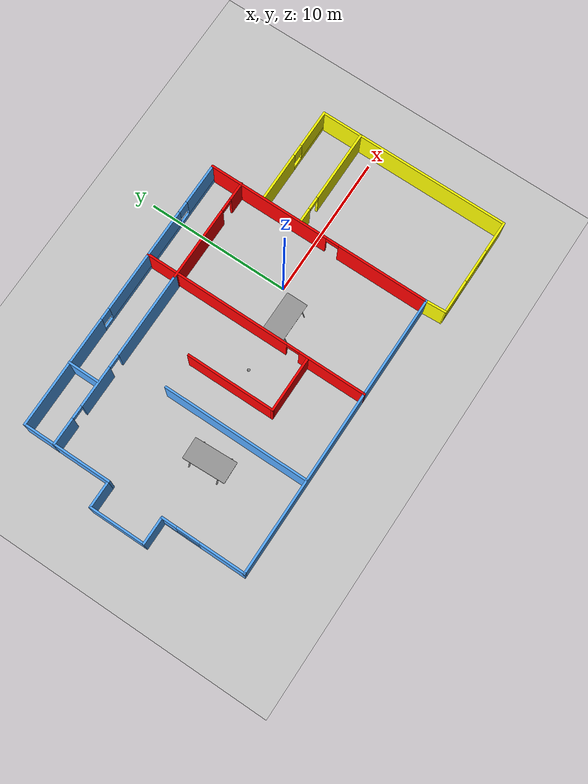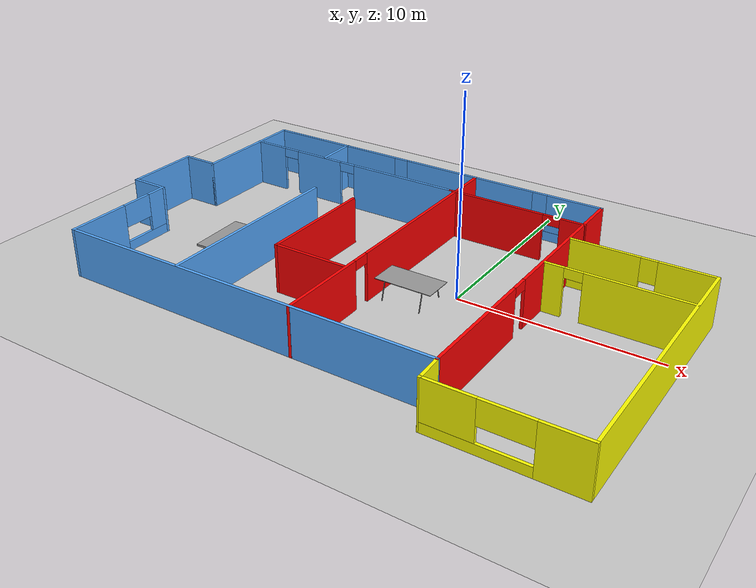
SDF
<sdf version="1.7">
 <world name="default">
  <plugin name="hello" filename="libwelcome_to_q802.so"/>
  <light name="sun" type="directional">
   <pose>0 0 10 0 -0 0</pose>
   <diffuse>0.8 0.8 0.8 1</diffuse>
   <specular>0.2 0.2 0.2 1</specular>
   <attenuation>
    <range>1000</range>
    <constant>0.9</constant>
    <linear>0.01</linear>
    <quadratic>0.001</quadratic>
   </attenuation>
   <direction>-0.5 0.1 -0.9</direction>
   <spot><inner_angle>0</inner_angle><outer_angle>0</outer_angle><falloff>0</falloff></spot>
  </light>
  <gravity>0 0 -9.8</gravity>
  <magnetic_field>6e-06 2.3e-05 -4.2e-05</magnetic_field>
  <atmosphere type="adiabatic"/>
  <physics name="default_physics" default="0" type="ode">
   <max_step_size>0.001</max_step_size>
   <real_time_factor>1</real_time_factor>
   <real_time_update_rate>1000</real_time_update_rate>
  </physics>
  <scene><ambient>0.4 0.4 0.4 1</ambient><background>0.7 0.7 0.7 1</background><shadows>1</shadows></scene>
  <spherical_coordinates>
   <surface_model>EARTH_WGS84</surface_model>
   <latitude_deg>0</latitude_deg>
   <longitude_deg>0</longitude_deg>
   <elevation>0</elevation>
   <heading_deg>0</heading_deg>
  </spherical_coordinates>
  <model name="Q802">
   <pose>-3.7633 -0.79824 0 0 -0 0</pose>
   <link name="Wall_10">
    <collision name="Wall_10_Collision">
     <geometry><box><size>6.3 0.15 2.5</size></box></geometry>
     <pose>0 0 1.25 0 -0 0</pose>
    </collision>
    <visual name="Wall_10_Visual">
     <pose>0 0 1.25 0 -0 0</pose>
     <geometry><box><size>6.3 0.15 2.5</size></box></geometry>
     <material>
      <script><uri>file://media/materials/scripts/gazebo.material</uri><name>Gazebo/Grey</name></script>
      <ambient>0.333333 0.666667 1 1</ambient>
     </material>
     <meta><layer>0</layer></meta>
    </visual>
    <pose>-12.4599 5.50976 0 0 -0 1.5708</pose>
   </link>
   <link name="Wall_14">
    <pose>10.8849 4.74464 0 0 -0 0</pose>
    <visual name="Wall_14_Visual_0">
     <pose>-1.76886 0 1.25 0 -0 0</pose>
     <geometry><box><size>3.46228 0.15 2.5</size></box></geometry>
     <material>
      <script><uri>file://media/materials/scripts/gazebo.material</uri><name>Gazebo/Grey</name></script>
      <ambient>1 1 0 1</ambient>
     </material>
     <meta><layer>0</layer></meta>
    </visual>
    <collision name="Wall_14_Collision_0">
     <geometry><box><size>3.46228 0.15 2.5</size></box></geometry>
     <pose>-1.76886 0 1.25 0 -0 0</pose>
    </collision>
    <visual name="Wall_14_Visual_1">
     <pose>1.73114 0 0.25 0 -0 0</pose>
     <geometry><box><size>3.53772 0.15 0.5</size></box></geometry>
     <material>
      <script><uri>file://media/materials/scripts/gazebo.material</uri><name>Gazebo/Grey</name></script>
      <ambient>1 1 0 1</ambient>
     </material>
     <meta><layer>0</layer></meta>
    </visual>
    <collision name="Wall_14_Collision_1">
     <geometry><box><size>3.53772 0.15 0.5</size></box></geometry>
     <pose>1.73114 0 0.25 0 -0 0</pose>
    </collision>
    <visual name="Wall_14_Visual_2">
     <pose>2.13114 0 1.5 0 -0 0</pose>
     <geometry><box><size>2.73772 0.15 2</size></box></geometry>
     <material>
      <script><uri>file://media/materials/scripts/gazebo.material</uri><name>Gazebo/Grey</name></script>
      <ambient>1 1 0 1</ambient>
     </material>
     <meta><layer>0</layer></meta>
    </visual>
    <collision name="Wall_14_Collision_2">
     <geometry><box><size>2.73772 0.15 2</size></box></geometry>
     <pose>2.13114 0 1.5 0 -0 0</pose>
    </collision>
    <visual name="Wall_14_Visual_3">
     <pose>0.362281 0 1.9 0 -0 0</pose>
     <geometry><box><size>0.8 0.15 1.2</size></box></geometry>
     <material>
      <script><uri>file://media/materials/scripts/gazebo.material</uri><name>Gazebo/Grey</name></script>
      <ambient>1 1 0 1</ambient>
     </material>
     <meta><layer>0</layer></meta>
    </visual>
    <collision name="Wall_14_Collision_3">
     <geometry><box><size>0.8 0.15 1.2</size></box></geometry>
     <pose>0.362281 0 1.9 0 -0 0</pose>
    </collision>
   </link>
   <link name="Wall_15">
    <collision name="Wall_15_Collision">
     <geometry><box><size>13.5 0.15 2.5</size></box></geometry>
     <pose>0 0 1.25 0 -0 0</pose>
    </collision>
    <visual name="Wall_15_Visual">
     <pose>0 0 1.25 0 -0 0</pose>
     <geometry><box><size>13.5 0.15 2.5</size></box></geometry>
     <material>
      <script><uri>file://media/materials/scripts/gazebo.material</uri><name>Gazebo/Grey</name></script>
      <ambient>1 1 0 1</ambient>
     </material>
     <meta><layer>0</layer></meta>
    </visual>
    <pose>14.3099 -1.93036 0 0 0 -1.5708</pose>
   </link>
   <link name="Wall_16">
    <pose>10.8849 -8.60536 0 0 -0 3.14159</pose>
    <visual name="Wall_16_Visual_0">
     <pose>-2.39252 0 1.25 0 -0 0</pose>
     <geometry><box><size>2.21496 0.15 2.5</size></box></geometry>
     <material>
      <script><uri>file://media/materials/scripts/gazebo.material</uri><name>Gazebo/Grey</name></script>
      <ambient>1 1 0 1</ambient>
     </material>
     <meta><layer>0</layer></meta>
    </visual>
    <collision name="Wall_16_Collision_0">
     <geometry><box><size>2.21496 0.15 2.5</size></box></geometry>
     <pose>-2.39252 0 1.25 0 -0 0</pose>
    </collision>
    <visual name="Wall_16_Visual_1">
     <pose>1.10748 0 0.25 0 -0 0</pose>
     <geometry><box><size>4.78504 0.15 0.5</size></box></geometry>
     <material>
      <script><uri>file://media/materials/scripts/gazebo.material</uri><name>Gazebo/Grey</name></script>
      <ambient>1 1 0 1</ambient>
     </material>
     <meta><layer>0</layer></meta>
    </visual>
    <collision name="Wall_16_Collision_1">
     <geometry><box><size>4.78504 0.15 0.5</size></box></geometry>
     <pose>1.10748 0 0.25 0 -0 0</pose>
    </collision>
    <visual name="Wall_16_Visual_2">
     <pose>2.28581 0 1.5 0 -0 0</pose>
     <geometry><box><size>2.42838 0.15 2</size></box></geometry>
     <material>
      <script><uri>file://media/materials/scripts/gazebo.material</uri><name>Gazebo/Grey</name></script>
      <ambient>1 1 0 1</ambient>
     </material>
     <meta><layer>0</layer></meta>
    </visual>
    <collision name="Wall_16_Collision_2">
     <geometry><box><size>2.42838 0.15 2</size></box></geometry>
     <pose>2.28581 0 1.5 0 -0 0</pose>
    </collision>
    <visual name="Wall_16_Visual_3">
     <pose>-0.106709 0 1.9 0 -0 0</pose>
     <geometry><box><size>2.35665 0.15 1.2</size></box></geometry>
     <material>
      <script><uri>file://media/materials/scripts/gazebo.material</uri><name>Gazebo/Grey</name></script>
      <ambient>1 1 0 1</ambient>
     </material>
     <meta><layer>0</layer></meta>
    </visual>
    <collision name="Wall_16_Collision_3">
     <geometry><box><size>2.35665 0.15 1.2</size></box></geometry>
     <pose>-0.106709 0 1.9 0 -0 0</pose>
    </collision>
   </link>
   <link name="Wall_17">
    <collision name="Wall_17_Collision">
     <geometry><box><size>1.49193 0.15 2.5</size></box></geometry>
     <pose>0 0 1.25 0 -0 0</pose>
    </collision>
    <visual name="Wall_17_Visual">
     <pose>0 0 1.25 0 -0 0</pose>
     <geometry><box><size>1.49193 0.15 2.5</size></box></geometry>
     <material>
      <script><uri>file://media/materials/scripts/gazebo.material</uri><name>Gazebo/Grey</name></script>
      <ambient>1 1 0 1</ambient>
     </material>
     <meta><layer>0</layer></meta>
    </visual>
    <pose>7.425 -7.9353 0 0 -0 1.62282</pose>
   </link>
   <link name="Wall_19">
    <pose>0.378646 0.656096 0 0 0 -1.5708</pose>
    <visual name="Wall_19_Visual_0">
     <pose>-2.82346 0 1.25 0 -0 0</pose>
     <geometry><box><size>10.3531 0.15 2.5</size></box></geometry>
     <material>
      <script><uri>file://media/materials/scripts/gazebo.material</uri><name>Gazebo/Grey</name></script>
      <ambient>1 0 0 1</ambient>
     </material>
     <meta><layer>0</layer></meta>
    </visual>
    <collision name="Wall_19_Collision_0">
     <geometry><box><size>10.3531 0.15 2.5</size></box></geometry>
     <pose>-2.82346 0 1.25 0 -0 0</pose>
    </collision>
    <visual name="Wall_19_Visual_1">
     <pose>5.62654 0 1.25 0 -0 0</pose>
     <geometry><box><size>4.74692 0.15 2.5</size></box></geometry>
     <material>
      <script><uri>file://media/materials/scripts/gazebo.material</uri><name>Gazebo/Grey</name></script>
      <ambient>1 0 0 1</ambient>
     </material>
     <meta><layer>0</layer></meta>
    </visual>
    <collision name="Wall_19_Collision_1">
     <geometry><box><size>4.74692 0.15 2.5</size></box></geometry>
     <pose>5.62654 0 1.25 0 -0 0</pose>
    </collision>
    <visual name="Wall_19_Visual_2">
     <pose>2.80308 0 2.25 0 -0 0</pose>
     <geometry><box><size>0.9 0.15 0.5</size></box></geometry>
     <material>
      <script><uri>file://media/materials/scripts/gazebo.material</uri><name>Gazebo/Grey</name></script>
      <ambient>1 0 0 1</ambient>
     </material>
     <meta><layer>0</layer></meta>
    </visual>
    <collision name="Wall_19_Collision_2">
     <geometry><box><size>0.9 0.15 0.5</size></box></geometry>
     <pose>2.80308 0 2.25 0 -0 0</pose>
    </collision>
   </link>
   <link name="Wall_21">
    <pose>3.76429 6.42301 0 0 -0 3.14159</pose>
    <visual name="Wall_21_Visual_0">
     <pose>-3.07248 0 1.25 0 -0 0</pose>
     <geometry><box><size>1.31441 0.15 2.5</size></box></geometry>
     <material>
      <script><uri>file://media/materials/scripts/gazebo.material</uri><name>Gazebo/Grey</name></script>
      <ambient>1 0 0 1</ambient>
     </material>
     <meta><layer>0</layer></meta>
    </visual>
    <collision name="Wall_21_Collision_0">
     <geometry><box><size>1.31441 0.15 2.5</size></box></geometry>
     <pose>-3.07248 0 1.25 0 -0 0</pose>
    </collision>
    <visual name="Wall_21_Visual_1">
     <pose>1.1072 0 1.25 0 -0 0</pose>
     <geometry><box><size>5.24495 0.15 2.5</size></box></geometry>
     <material>
      <script><uri>file://media/materials/scripts/gazebo.material</uri><name>Gazebo/Grey</name></script>
      <ambient>1 0 0 1</ambient>
     </material>
     <meta><layer>0</layer></meta>
    </visual>
    <collision name="Wall_21_Collision_1">
     <geometry><box><size>5.24495 0.15 2.5</size></box></geometry>
     <pose>1.1072 0 1.25 0 -0 0</pose>
    </collision>
    <visual name="Wall_21_Visual_2">
     <pose>-1.96527 0 2.25 0 -0 0</pose>
     <geometry><box><size>0.9 0.15 0.5</size></box></geometry>
     <material>
      <script><uri>file://media/materials/scripts/gazebo.material</uri><name>Gazebo/Grey</name></script>
      <ambient>1 0 0 1</ambient>
     </material>
     <meta><layer>0</layer></meta>
    </visual>
    <collision name="Wall_21_Collision_2">
     <geometry><box><size>0.9 0.15 0.5</size></box></geometry>
     <pose>-1.96527 0 2.25 0 -0 0</pose>
    </collision>
   </link>
   <link name="Wall_22">
    <pose>-6.16712 6.42301 0 0 -0 3.14159</pose>
    <visual name="Wall_22_Visual_0">
     <pose>-3.32437 0 1.25 0 -0 0</pose>
     <geometry><box><size>6.10127 0.15 2.5</size></box></geometry>
     <material>
      <script><uri>file://media/materials/scripts/gazebo.material</uri><name>Gazebo/Grey</name></script>
      <ambient>0.333333 0.666667 1 1</ambient>
     </material>
     <meta><layer>0</layer></meta>
    </visual>
    <collision name="Wall_22_Collision_0">
     <geometry><box><size>6.10127 0.15 2.5</size></box></geometry>
     <pose>-3.32437 0 1.25 0 -0 0</pose>
    </collision>
    <visual name="Wall_22_Visual_1">
     <pose>2.07212 0 1.25 0 -0 0</pose>
     <geometry><box><size>2.8917 0.15 2.5</size></box></geometry>
     <material>
      <script><uri>file://media/materials/scripts/gazebo.material</uri><name>Gazebo/Grey</name></script>
      <ambient>0.333333 0.666667 1 1</ambient>
     </material>
     <meta><layer>0</layer></meta>
    </visual>
    <collision name="Wall_22_Collision_1">
     <geometry><box><size>2.8917 0.15 2.5</size></box></geometry>
     <pose>2.07212 0 1.25 0 -0 0</pose>
    </collision>
    <visual name="Wall_22_Visual_2">
     <pose>5.39648 0 1.25 0 -0 0</pose>
     <geometry><box><size>1.95704 0.15 2.5</size></box></geometry>
     <material>
      <script><uri>file://media/materials/scripts/gazebo.material</uri><name>Gazebo/Grey</name></script>
      <ambient>0.333333 0.666667 1 1</ambient>
     </material>
     <meta><layer>0</layer></meta>
    </visual>
    <collision name="Wall_22_Collision_2">
     <geometry><box><size>1.95704 0.15 2.5</size></box></geometry>
     <pose>5.39648 0 1.25 0 -0 0</pose>
    </collision>
    <visual name="Wall_22_Visual_3">
     <pose>0.176266 0 2.25 0 -0 0</pose>
     <geometry><box><size>0.9 0.15 0.5</size></box></geometry>
     <material>
      <script><uri>file://media/materials/scripts/gazebo.material</uri><name>Gazebo/Grey</name></script>
      <ambient>0.333333 0.666667 1 1</ambient>
     </material>
     <meta><layer>0</layer></meta>
    </visual>
    <collision name="Wall_22_Collision_3">
     <geometry><box><size>0.9 0.15 0.5</size></box></geometry>
     <pose>0.176266 0 2.25 0 -0 0</pose>
    </collision>
    <visual name="Wall_22_Visual_4">
     <pose>3.96796 0 2.25 0 -0 0</pose>
     <geometry><box><size>0.9 0.15 0.5</size></box></geometry>
     <material>
      <script><uri>file://media/materials/scripts/gazebo.material</uri><name>Gazebo/Grey</name></script>
      <ambient>0.333333 0.666667 1 1</ambient>
     </material>
     <meta><layer>0</layer></meta>
    </visual>
    <collision name="Wall_22_Collision_4">
     <geometry><box><size>0.9 0.15 0.5</size></box></geometry>
     <pose>3.96796 0 2.25 0 -0 0</pose>
    </collision>
   </link>
   <link name="Wall_24">
    <collision name="Wall_24_Collision">
     <geometry><box><size>4 0.15 2.5</size></box></geometry>
     <pose>0 0 1.25 0 -0 0</pose>
    </collision>
    <visual name="Wall_24_Visual">
     <pose>0 0 1.25 0 -0 0</pose>
     <geometry><box><size>4 0.15 2.5</size></box></geometry>
     <material>
      <script><uri>file://media/materials/scripts/gazebo.material</uri><name>Gazebo/Grey</name></script>
      <ambient>1 0 0 1</ambient>
     </material>
     <meta><layer>0</layer></meta>
    </visual>
    <pose>-1.57906 -3.23308 0 0 -0 3.14159</pose>
   </link>
   <link name="Wall_25">
    <collision name="Wall_25_Collision">
     <geometry><box><size>6.25 0.15 2.5</size></box></geometry>
     <pose>0 0 1.25 0 -0 0</pose>
    </collision>
    <visual name="Wall_25_Visual">
     <pose>0 0 1.25 0 -0 0</pose>
     <geometry><box><size>6.25 0.15 2.5</size></box></geometry>
     <material>
      <script><uri>file://media/materials/scripts/gazebo.material</uri><name>Gazebo/Grey</name></script>
      <ambient>1 0 0 1</ambient>
     </material>
     <meta><layer>0</layer></meta>
    </visual>
    <pose>-3.50406 -0.18308 0 0 -0 1.5708</pose>
   </link>
   <link name="Wall_27">
    <collision name="Wall_27_Collision">
     <geometry><box><size>10.25 0.15 2.5</size></box></geometry>
     <pose>0 0 1.25 0 -0 0</pose>
    </collision>
    <visual name="Wall_27_Visual">
     <pose>0 0 1.25 0 -0 0</pose>
     <geometry><box><size>10.25 0.15 2.5</size></box></geometry>
     <material>
      <script><uri>file://media/materials/scripts/gazebo.material</uri><name>Gazebo/Grey</name></script>
      <ambient>0.333333 0.666667 1 1</ambient>
     </material>
     <meta><layer>0</layer></meta>
    </visual>
    <pose>-5.89914 -2.18239 0 0 -0 1.5708</pose>
   </link>
   <link name="Wall_29">
    <collision name="Wall_29_Collision">
     <geometry><box><size>2.25 0.15 2.5</size></box></geometry>
     <pose>0 0 1.25 0 -0 0</pose>
    </collision>
    <visual name="Wall_29_Visual">
     <pose>0 0 1.25 0 -0 0</pose>
     <geometry><box><size>2.25 0.15 2.5</size></box></geometry>
     <material>
      <script><uri>file://media/materials/scripts/gazebo.material</uri><name>Gazebo/Grey</name></script>
      <ambient>0.333333 0.666667 1 1</ambient>
     </material>
     <meta><layer>0</layer></meta>
    </visual>
    <pose>-7.90194 7.55916 0 0 0 -1.5708</pose>
   </link>
   <link name="Wall_3">
    <pose>-2.53489 8.58475 0 0 -0 0</pose>
    <visual name="Wall_3_Visual_0">
     <pose>-6.04357 0 1.25 0 -0 0</pose>
     <geometry><box><size>7.91286 0.15 2.5</size></box></geometry>
     <material>
      <script><uri>file://media/materials/scripts/gazebo.material</uri><name>Gazebo/Grey</name></script>
      <ambient>0.333333 0.666667 1 1</ambient>
     </material>
     <meta><layer>0</layer></meta>
    </visual>
    <collision name="Wall_3_Collision_0">
     <geometry><box><size>7.91286 0.15 2.5</size></box></geometry>
     <pose>-6.04357 0 1.25 0 -0 0</pose>
    </collision>
    <visual name="Wall_3_Visual_1">
     <pose>3.95643 0 0.25 0 -0 0</pose>
     <geometry><box><size>12.0871 0.15 0.5</size></box></geometry>
     <material>
      <script><uri>file://media/materials/scripts/gazebo.material</uri><name>Gazebo/Grey</name></script>
      <ambient>0.333333 0.666667 1 1</ambient>
     </material>
     <meta><layer>0</layer></meta>
    </visual>
    <collision name="Wall_3_Collision_1">
     <geometry><box><size>12.0871 0.15 0.5</size></box></geometry>
     <pose>3.95643 0 0.25 0 -0 0</pose>
    </collision>
    <visual name="Wall_3_Visual_2">
     <pose>2.47675 0 1.5 0 -0 0</pose>
     <geometry><box><size>7.52778 0.15 2</size></box></geometry>
     <material>
      <script><uri>file://media/materials/scripts/gazebo.material</uri><name>Gazebo/Grey</name></script>
      <ambient>0.333333 0.666667 1 1</ambient>
     </material>
     <meta><layer>0</layer></meta>
    </visual>
    <collision name="Wall_3_Collision_2">
     <geometry><box><size>7.52778 0.15 2</size></box></geometry>
     <pose>2.47675 0 1.5 0 -0 0</pose>
    </collision>
    <visual name="Wall_3_Visual_3">
     <pose>8.52032 0 1.5 0 -0 0</pose>
     <geometry><box><size>2.95936 0.15 2</size></box></geometry>
     <material>
      <script><uri>file://media/materials/scripts/gazebo.material</uri><name>Gazebo/Grey</name></script>
      <ambient>0.333333 0.666667 1 1</ambient>
     </material>
     <meta><layer>0</layer></meta>
    </visual>
    <collision name="Wall_3_Collision_3">
     <geometry><box><size>2.95936 0.15 2</size></box></geometry>
     <pose>8.52032 0 1.5 0 -0 0</pose>
    </collision>
    <visual name="Wall_3_Visual_4">
     <pose>-1.68714 0 1.9 0 -0 0</pose>
     <geometry><box><size>0.8 0.15 1.2</size></box></geometry>
     <material>
      <script><uri>file://media/materials/scripts/gazebo.material</uri><name>Gazebo/Grey</name></script>
      <ambient>0.333333 0.666667 1 1</ambient>
     </material>
     <meta><layer>0</layer></meta>
    </visual>
    <collision name="Wall_3_Collision_4">
     <geometry><box><size>0.8 0.15 1.2</size></box></geometry>
     <pose>-1.68714 0 1.9 0 -0 0</pose>
    </collision>
    <visual name="Wall_3_Visual_5">
     <pose>6.64064 0 1.9 0 -0 0</pose>
     <geometry><box><size>0.8 0.15 1.2</size></box></geometry>
     <material>
      <script><uri>file://media/materials/scripts/gazebo.material</uri><name>Gazebo/Grey</name></script>
      <ambient>0.333333 0.666667 1 1</ambient>
     </material>
     <meta><layer>0</layer></meta>
    </visual>
    <collision name="Wall_3_Collision_5">
     <geometry><box><size>0.8 0.15 1.2</size></box></geometry>
     <pose>6.64064 0 1.9 0 -0 0</pose>
    </collision>
   </link>
   <link name="Wall_33">
    <pose>10.8572 1.97538 0 0 -0 0</pose>
    <visual name="Wall_33_Visual_0">
     <pose>-2.97993 0 1.25 0 -0 0</pose>
     <geometry><box><size>1.04014 0.15 2.5</size></box></geometry>
     <material>
      <script><uri>file://media/materials/scripts/gazebo.material</uri><name>Gazebo/Grey</name></script>
      <ambient>1 1 0 1</ambient>
     </material>
     <meta><layer>0</layer></meta>
    </visual>
    <collision name="Wall_33_Collision_0">
     <geometry><box><size>1.04014 0.15 2.5</size></box></geometry>
     <pose>-2.97993 0 1.25 0 -0 0</pose>
    </collision>
    <visual name="Wall_33_Visual_1">
     <pose>0.970071 0 1.25 0 -0 0</pose>
     <geometry><box><size>5.05986 0.15 2.5</size></box></geometry>
     <material>
      <script><uri>file://media/materials/scripts/gazebo.material</uri><name>Gazebo/Grey</name></script>
      <ambient>1 1 0 1</ambient>
     </material>
     <meta><layer>0</layer></meta>
    </visual>
    <collision name="Wall_33_Collision_1">
     <geometry><box><size>5.05986 0.15 2.5</size></box></geometry>
     <pose>0.970071 0 1.25 0 -0 0</pose>
    </collision>
    <visual name="Wall_33_Visual_2">
     <pose>-2.00986 0 2.25 0 -0 0</pose>
     <geometry><box><size>0.9 0.15 0.5</size></box></geometry>
     <material>
      <script><uri>file://media/materials/scripts/gazebo.material</uri><name>Gazebo/Grey</name></script>
      <ambient>1 1 0 1</ambient>
     </material>
     <meta><layer>0</layer></meta>
    </visual>
    <collision name="Wall_33_Collision_2">
     <geometry><box><size>0.9 0.15 0.5</size></box></geometry>
     <pose>-2.00986 0 2.25 0 -0 0</pose>
    </collision>
   </link>
   <link name="Wall_4">
    <pose>7.39011 0.659755 0 0 0 -1.5708</pose>
    <visual name="Wall_4_Visual_0">
     <pose>-3.68302 0 1.25 0 -0 0</pose>
     <geometry><box><size>8.63396 0.15 2.5</size></box></geometry>
     <material>
      <script><uri>file://media/materials/scripts/gazebo.material</uri><name>Gazebo/Grey</name></script>
      <ambient>1 0 0 1</ambient>
     </material>
     <meta><layer>0</layer></meta>
    </visual>
    <collision name="Wall_4_Collision_0">
     <geometry><box><size>8.63396 0.15 2.5</size></box></geometry>
     <pose>-3.68302 0 1.25 0 -0 0</pose>
    </collision>
    <visual name="Wall_4_Visual_1">
     <pose>4.76698 0 1.25 0 -0 0</pose>
     <geometry><box><size>6.46604 0.15 2.5</size></box></geometry>
     <material>
      <script><uri>file://media/materials/scripts/gazebo.material</uri><name>Gazebo/Grey</name></script>
      <ambient>1 0 0 1</ambient>
     </material>
     <meta><layer>0</layer></meta>
    </visual>
    <collision name="Wall_4_Collision_1">
     <geometry><box><size>6.46604 0.15 2.5</size></box></geometry>
     <pose>4.76698 0 1.25 0 -0 0</pose>
    </collision>
    <visual name="Wall_4_Visual_2">
     <pose>1.08396 0 2.25 0 -0 0</pose>
     <geometry><box><size>0.9 0.15 0.5</size></box></geometry>
     <material>
      <script><uri>file://media/materials/scripts/gazebo.material</uri><name>Gazebo/Grey</name></script>
      <ambient>1 0 0 1</ambient>
     </material>
     <meta><layer>0</layer></meta>
    </visual>
    <collision name="Wall_4_Collision_2">
     <geometry><box><size>0.9 0.15 0.5</size></box></geometry>
     <pose>1.08396 0 2.25 0 -0 0</pose>
    </collision>
   </link>
   <link name="Wall_5">
    <collision name="Wall_5_Collision">
     <geometry><box><size>20 0.15 2.5</size></box></geometry>
     <pose>0 0 1.25 0 -0 0</pose>
    </collision>
    <visual name="Wall_5_Visual">
     <pose>0 0 1.25 0 -0 0</pose>
     <geometry><box><size>20 0.15 2.5</size></box></geometry>
     <material>
      <script><uri>file://media/materials/scripts/gazebo.material</uri><name>Gazebo/Grey</name></script>
      <ambient>0.333333 0.666667 1 1</ambient>
     </material>
     <meta><layer>0</layer></meta>
    </visual>
    <pose>-2.53489 -7.26525 0 0 -0 3.14159</pose>
   </link>
   <link name="Wall_6">
    <pose>-12.4599 -4.34025 0 0 -0 1.5708</pose>
    <visual name="Wall_6_Visual_0">
     <pose>-1.37719 0 1.25 0 -0 0</pose>
     <geometry><box><size>3.24563 0.15 2.5</size></box></geometry>
     <material>
      <script><uri>file://media/materials/scripts/gazebo.material</uri><name>Gazebo/Grey</name></script>
      <ambient>0.333333 0.666667 1 1</ambient>
     </material>
     <meta><layer>0</layer></meta>
    </visual>
    <collision name="Wall_6_Collision_0">
     <geometry><box><size>3.24563 0.15 2.5</size></box></geometry>
     <pose>-1.37719 0 1.25 0 -0 0</pose>
    </collision>
    <visual name="Wall_6_Visual_1">
     <pose>1.62281 0 0.25 0 -0 0</pose>
     <geometry><box><size>2.75437 0.15 0.5</size></box></geometry>
     <material>
      <script><uri>file://media/materials/scripts/gazebo.material</uri><name>Gazebo/Grey</name></script>
      <ambient>0.333333 0.666667 1 1</ambient>
     </material>
     <meta><layer>0</layer></meta>
    </visual>
    <collision name="Wall_6_Collision_1">
     <geometry><box><size>2.75437 0.15 0.5</size></box></geometry>
     <pose>1.62281 0 0.25 0 -0 0</pose>
    </collision>
    <visual name="Wall_6_Visual_2">
     <pose>2.44153 0 1.5 0 -0 0</pose>
     <geometry><box><size>1.11694 0.15 2</size></box></geometry>
     <material>
      <script><uri>file://media/materials/scripts/gazebo.material</uri><name>Gazebo/Grey</name></script>
      <ambient>0.333333 0.666667 1 1</ambient>
     </material>
     <meta><layer>0</layer></meta>
    </visual>
    <collision name="Wall_6_Collision_2">
     <geometry><box><size>1.11694 0.15 2</size></box></geometry>
     <pose>2.44153 0 1.5 0 -0 0</pose>
    </collision>
    <visual name="Wall_6_Visual_3">
     <pose>1.06434 0 1.9 0 -0 0</pose>
     <geometry><box><size>1.63743 0.15 1.2</size></box></geometry>
     <material>
      <script><uri>file://media/materials/scripts/gazebo.material</uri><name>Gazebo/Grey</name></script>
      <ambient>0.333333 0.666667 1 1</ambient>
     </material>
     <meta><layer>0</layer></meta>
    </visual>
    <collision name="Wall_6_Collision_3">
     <geometry><box><size>1.63743 0.15 1.2</size></box></geometry>
     <pose>1.06434 0 1.9 0 -0 0</pose>
    </collision>
   </link>
   <link name="Wall_7">
    <collision name="Wall_7_Collision">
     <geometry><box><size>2 0.15 2.5</size></box></geometry>
     <pose>0 0 1.25 0 -0 0</pose>
    </collision>
    <visual name="Wall_7_Visual">
     <pose>0 0 1.25 0 -0 0</pose>
     <geometry><box><size>2 0.15 2.5</size></box></geometry>
     <material>
      <script><uri>file://media/materials/scripts/gazebo.material</uri><name>Gazebo/Grey</name></script>
      <ambient>0.333333 0.666667 1 1</ambient>
     </material>
     <meta><layer>0</layer></meta>
    </visual>
    <pose>-13.3849 -1.41525 0 0 -0 3.14159</pose>
   </link>
   <link name="Wall_8">
    <collision name="Wall_8_Collision">
     <geometry><box><size>4 0.15 2.5</size></box></geometry>
     <pose>0 0 1.25 0 -0 0</pose>
    </collision>
    <visual name="Wall_8_Visual">
     <pose>0 0 1.25 0 -0 0</pose>
     <geometry><box><size>4 0.15 2.5</size></box></geometry>
     <material>
      <script><uri>file://media/materials/scripts/gazebo.material</uri><name>Gazebo/Grey</name></script>
      <ambient>0.333333 0.666667 1 1</ambient>
     </material>
     <meta><layer>0</layer></meta>
    </visual>
    <pose>-14.3099 0.509755 0 0 -0 1.5708</pose>
   </link>
   <link name="Wall_9">
    <collision name="Wall_9_Collision">
     <geometry><box><size>2 0.15 2.5</size></box></geometry>
     <pose>0 0 1.25 0 -0 0</pose>
    </collision>
    <visual name="Wall_9_Visual">
     <pose>0 0 1.25 0 -0 0</pose>
     <geometry><box><size>2 0.15 2.5</size></box></geometry>
     <material>
      <script><uri>file://media/materials/scripts/gazebo.material</uri><name>Gazebo/Grey</name></script>
      <ambient>0.333333 0.666667 1 1</ambient>
     </material>
     <meta><layer>0</layer></meta>
    </visual>
    <pose>-13.3849 2.43476 0 0 -0 0</pose>
   </link>
   <static>1</static>
  </model>
  <model name="ground_plane">
   <static>1</static>
   <link name="link">
    <collision name="collision">
     <geometry><plane><normal>0 0 1</normal><size>100 100</size></plane></geometry>
     <surface>
      <contact><collide_bitmask>65535</collide_bitmask></contact>
      <friction><ode><mu>100</mu><mu2>50</mu2></ode></friction>
     </surface>
    </collision>
    <visual name="visual">
     <cast_shadows>0</cast_shadows>
     <geometry><plane><normal>0 0 1</normal><size>100 100</size></plane></geometry>
     <material>
      <script><uri>file://media/materials/scripts/gazebo.material</uri><name>Gazebo/Grey</name></script>
     </material>
    </visual>
   </link>
   <pose>8.37899 15.5782 0 0 -0 0</pose>
  </model>
  <model name="WorkBench">
   <link name="link_0">
    <inertial>
     <mass>1</mass>
     <inertia>
      <ixx>0.166667</ixx>
      <ixy>0</ixy>
      <ixz>0</ixz>
      <iyy>0.166667</iyy>
      <iyz>0</iyz>
      <izz>0.166667</izz>
     </inertia>
    </inertial>
    <pose>-7.00298 -12.5514 1.3041 0 -0 0</pose>
    <visual name="visual">
     <geometry><box><size>1.5 3 0.1</size></box></geometry>
     <material>
      <lighting>1</lighting>
      <script><uri>file://media/materials/scripts/gazebo.material</uri><name>Gazebo/Grey</name></script>
      <shader type="pixel"><normal_map>__default__</normal_map></shader>
      <ambient>0.6 0.6 0.6 1</ambient>
      <diffuse>0.7 0.7 0.7 1</diffuse>
      <specular>0.01 0.01 0.01 1</specular>
      <emissive>0 0 0 1</emissive>
     </material>
    </visual>
    <collision name="collision">
     <geometry><box><size>1.5 3 0.1</size></box></geometry>
     <surface>
      <friction>
       <ode><mu>1</mu><mu2>1</mu2><fdir1>0 0 0</fdir1><slip1>0</slip1><slip2>0</slip2></ode>
       <torsional>
        <coefficient>1</coefficient>
        <patch_radius>0</patch_radius>
        <surface_radius>0</surface_radius>
        <use_patch_radius>1</use_patch_radius>
        <ode><slip>0</slip></ode>
       </torsional>
      </friction>
      <bounce><restitution_coefficient>0</restitution_coefficient><threshold>1e+06</threshold></bounce>
      <contact>
       <collide_without_contact>0</collide_without_contact>
       <collide_without_contact_bitmask>1</collide_without_contact_bitmask>
       <collide_bitmask>1</collide_bitmask>
       <ode>
        <soft_cfm>0</soft_cfm>
        <soft_erp>0.2</soft_erp>
        <kp>1e+13</kp>
        <kd>1</kd>
        <max_vel>0.01</max_vel>
        <min_depth>0</min_depth>
       </ode>
       <bullet>
        <split_impulse>1</split_impulse>
        <split_impulse_penetration_threshold>-0.01</split_impulse_penetration_threshold>
        <soft_cfm>0</soft_cfm>
        <soft_erp>0.2</soft_erp>
        <kp>1e+13</kp>
        <kd>1</kd>
       </bullet>
      </contact>
     </surface>
    </collision>
   </link>
   <link name="link_1">
    <inertial>
     <mass>1</mass>
     <inertia><ixx>0.145833</ixx><ixy>0</ixy><ixz>0</ixz><iyy>0.145833</iyy><iyz>0</iyz><izz>0.125</izz></inertia>
    </inertial>
    <pose>-6.25298 -11.5514 0.804104 0 -0 0</pose>
    <visual name="visual">
     <pose>0 0 0 0 -0.25 0</pose>
     <geometry><cylinder><radius>0.05</radius><length>1</length></cylinder></geometry>
     <material>
      <lighting>1</lighting>
      <script><uri>file://media/materials/scripts/gazebo.material</uri><name>Gazebo/Grey</name></script>
      <shader type="pixel"><normal_map>__default__</normal_map></shader>
      <ambient>0.6 0.6 0.6 1</ambient>
      <diffuse>0.7 0.7 0.7 1</diffuse>
      <specular>0.01 0.01 0.01 1</specular>
      <emissive>0 0 0 1</emissive>
     </material>
    </visual>
    <collision name="collision">
     <pose>0 0 0 0 -0.25 0</pose>
     <geometry><cylinder><radius>0.05</radius><length>1</length></cylinder></geometry>
     <surface>
      <friction>
       <ode><mu>1</mu><mu2>1</mu2><fdir1>0 0 0</fdir1><slip1>0</slip1><slip2>0</slip2></ode>
       <torsional>
        <coefficient>1</coefficient>
        <patch_radius>0</patch_radius>
        <surface_radius>0</surface_radius>
        <use_patch_radius>1</use_patch_radius>
        <ode><slip>0</slip></ode>
       </torsional>
      </friction>
      <bounce><restitution_coefficient>0</restitution_coefficient><threshold>1e+06</threshold></bounce>
      <contact>
       <collide_without_contact>0</collide_without_contact>
       <collide_without_contact_bitmask>1</collide_without_contact_bitmask>
       <collide_bitmask>1</collide_bitmask>
       <ode>
        <soft_cfm>0</soft_cfm>
        <soft_erp>0.2</soft_erp>
        <kp>1e+13</kp>
        <kd>1</kd>
        <max_vel>0.01</max_vel>
        <min_depth>0</min_depth>
       </ode>
       <bullet>
        <split_impulse>1</split_impulse>
        <split_impulse_penetration_threshold>-0.01</split_impulse_penetration_threshold>
        <soft_cfm>0</soft_cfm>
        <soft_erp>0.2</soft_erp>
        <kp>1e+13</kp>
        <kd>1</kd>
       </bullet>
      </contact>
     </surface>
    </collision>
   </link>
   <link name="link_1_clone">
    <inertial>
     <mass>1</mass>
     <inertia><ixx>0.145833</ixx><ixy>0</ixy><ixz>0</ixz><iyy>0.145833</iyy><iyz>0</iyz><izz>0.125</izz></inertia>
    </inertial>
    <pose>-6.25298 -13.5514 0.804104 0 -0 0</pose>
    <visual name="visual">
     <pose>0 0 0 0 -0.25 0</pose>
     <geometry><cylinder><radius>0.05</radius><length>1</length></cylinder></geometry>
     <material>
      <lighting>1</lighting>
      <script><uri>file://media/materials/scripts/gazebo.material</uri><name>Gazebo/Grey</name></script>
      <shader type="pixel"><normal_map>__default__</normal_map></shader>
      <ambient>0.6 0.6 0.6 1</ambient>
      <diffuse>0.7 0.7 0.7 1</diffuse>
      <specular>0.01 0.01 0.01 1</specular>
      <emissive>0 0 0 1</emissive>
     </material>
    </visual>
    <collision name="collision">
     <pose>0 0 0 0 -0.25 0</pose>
     <geometry><cylinder><radius>0.05</radius><length>1</length></cylinder></geometry>
     <surface>
      <friction>
       <ode><mu>1</mu><mu2>1</mu2><fdir1>0 0 0</fdir1><slip1>0</slip1><slip2>0</slip2></ode>
       <torsional>
        <coefficient>1</coefficient>
        <patch_radius>0</patch_radius>
        <surface_radius>0</surface_radius>
        <use_patch_radius>1</use_patch_radius>
        <ode><slip>0</slip></ode>
       </torsional>
      </friction>
      <bounce><restitution_coefficient>0</restitution_coefficient><threshold>1e+06</threshold></bounce>
      <contact>
       <collide_without_contact>0</collide_without_contact>
       <collide_without_contact_bitmask>1</collide_without_contact_bitmask>
       <collide_bitmask>1</collide_bitmask>
       <ode>
        <soft_cfm>0</soft_cfm>
        <soft_erp>0.2</soft_erp>
        <kp>1e+13</kp>
        <kd>1</kd>
        <max_vel>0.01</max_vel>
        <min_depth>0</min_depth>
       </ode>
       <bullet>
        <split_impulse>1</split_impulse>
        <split_impulse_penetration_threshold>-0.01</split_impulse_penetration_threshold>
        <soft_cfm>0</soft_cfm>
        <soft_erp>0.2</soft_erp>
        <kp>1e+13</kp>
        <kd>1</kd>
       </bullet>
      </contact>
     </surface>
    </collision>
   </link>
   <link name="link_1_clone_clone">
    <inertial>
     <mass>1</mass>
     <inertia><ixx>0.145833</ixx><ixy>0</ixy><ixz>0</ixz><iyy>0.145833</iyy><iyz>0</iyz><izz>0.125</izz></inertia>
    </inertial>
    <pose>-7.75298 -11.5514 0.804104 0 -0 0</pose>
    <visual name="visual">
     <pose>0 0 0 0 0.25 0</pose>
     <geometry><cylinder><radius>0.05</radius><length>1</length></cylinder></geometry>
     <material>
      <lighting>1</lighting>
      <script><uri>file://media/materials/scripts/gazebo.material</uri><name>Gazebo/Grey</name></script>
      <shader type="pixel"><normal_map>__default__</normal_map></shader>
      <ambient>0.6 0.6 0.6 1</ambient>
      <diffuse>0.7 0.7 0.7 1</diffuse>
      <specular>0.01 0.01 0.01 1</specular>
      <emissive>0 0 0 1</emissive>
     </material>
    </visual>
    <collision name="collision">
     <pose>0 0 0 0 0.25 0</pose>
     <geometry><cylinder><radius>0.05</radius><length>1</length></cylinder></geometry>
     <surface>
      <friction>
       <ode><mu>1</mu><mu2>1</mu2><fdir1>0 0 0</fdir1><slip1>0</slip1><slip2>0</slip2></ode>
       <torsional>
        <coefficient>1</coefficient>
        <patch_radius>0</patch_radius>
        <surface_radius>0</surface_radius>
        <use_patch_radius>1</use_patch_radius>
        <ode><slip>0</slip></ode>
       </torsional>
      </friction>
      <bounce><restitution_coefficient>0</restitution_coefficient><threshold>1e+06</threshold></bounce>
      <contact>
       <collide_without_contact>0</collide_without_contact>
       <collide_without_contact_bitmask>1</collide_without_contact_bitmask>
       <collide_bitmask>1</collide_bitmask>
       <ode>
        <soft_cfm>0</soft_cfm>
        <soft_erp>0.2</soft_erp>
        <kp>1e+13</kp>
        <kd>1</kd>
        <max_vel>0.01</max_vel>
        <min_depth>0</min_depth>
       </ode>
       <bullet>
        <split_impulse>1</split_impulse>
        <split_impulse_penetration_threshold>-0.01</split_impulse_penetration_threshold>
        <soft_cfm>0</soft_cfm>
        <soft_erp>0.2</soft_erp>
        <kp>1e+13</kp>
        <kd>1</kd>
       </bullet>
      </contact>
     </surface>
    </collision>
   </link>
   <link name="link_1_clone_clone_0">
    <inertial>
     <mass>1</mass>
     <inertia><ixx>0.145833</ixx><ixy>0</ixy><ixz>0</ixz><iyy>0.145833</iyy><iyz>0</iyz><izz>0.125</izz></inertia>
    </inertial>
    <pose>-7.75298 -13.5514 0.804104 0 -0 0</pose>
    <visual name="visual">
     <pose>0 0 0 0 0.25 0</pose>
     <geometry><cylinder><radius>0.05</radius><length>1</length></cylinder></geometry>
     <material>
      <lighting>1</lighting>
      <script><uri>file://media/materials/scripts/gazebo.material</uri><name>Gazebo/Grey</name></script>
      <shader type="pixel"><normal_map>__default__</normal_map></shader>
      <ambient>0.6 0.6 0.6 1</ambient>
      <diffuse>0.7 0.7 0.7 1</diffuse>
      <specular>0.01 0.01 0.01 1</specular>
      <emissive>0 0 0 1</emissive>
     </material>
    </visual>
    <collision name="collision">
     <pose>0 0 0 0 0.25 0</pose>
     <geometry><cylinder><radius>0.05</radius><length>1</length></cylinder></geometry>
     <surface>
      <friction>
       <ode><mu>1</mu><mu2>1</mu2><fdir1>0 0 0</fdir1><slip1>0</slip1><slip2>0</slip2></ode>
       <torsional>
        <coefficient>1</coefficient>
        <patch_radius>0</patch_radius>
        <surface_radius>0</surface_radius>
        <use_patch_radius>1</use_patch_radius>
        <ode><slip>0</slip></ode>
       </torsional>
      </friction>
      <bounce><restitution_coefficient>0</restitution_coefficient><threshold>1e+06</threshold></bounce>
      <contact>
       <collide_without_contact>0</collide_without_contact>
       <collide_without_contact_bitmask>1</collide_without_contact_bitmask>
       <collide_bitmask>1</collide_bitmask>
       <ode>
        <soft_cfm>0</soft_cfm>
        <soft_erp>0.2</soft_erp>
        <kp>1e+13</kp>
        <kd>1</kd>
        <max_vel>0.01</max_vel>
        <min_depth>0</min_depth>
       </ode>
       <bullet>
        <split_impulse>1</split_impulse>
        <split_impulse_penetration_threshold>-0.01</split_impulse_penetration_threshold>
        <soft_cfm>0</soft_cfm>
        <soft_erp>0.2</soft_erp>
        <kp>1e+13</kp>
        <kd>1</kd>
       </bullet>
      </contact>
     </surface>
    </collision>
   </link>
   <joint name="link_0_JOINT_0" type="fixed">
    <parent>link_0</parent>
    <child>link_1_clone_clone_0</child>
    <physics>
     <ode><limit><cfm>0</cfm><erp>0.2</erp></limit><suspension><cfm>0</cfm><erp>0.2</erp></suspension></ode>
    </physics>
   </joint>
   <joint name="link_0_JOINT_1" type="revolute">
    <parent>link_0</parent>
    <child>link_1_clone</child>
    <axis>
     <xyz>1 0 0</xyz>
     <limit>
      <lower>-1.79769e+308</lower>
      <upper>1.79769e+308</upper>
      <effort>-1</effort>
      <velocity>-1</velocity>
     </limit>
     <dynamics>
      <spring_reference>0</spring_reference>
      <spring_stiffness>0</spring_stiffness>
      <damping>0</damping>
     </dynamics>
    </axis>
    <physics>
     <ode><limit><cfm>0</cfm><erp>0.2</erp></limit><suspension><cfm>0</cfm><erp>0.2</erp></suspension></ode>
    </physics>
   </joint>
   <joint name="link_0_JOINT_2" type="fixed">
    <parent>link_0</parent>
    <child>link_1_clone_clone</child>
    <physics>
     <ode><limit><cfm>0</cfm><erp>0.2</erp></limit><suspension><cfm>0</cfm><erp>0.2</erp></suspension></ode>
    </physics>
   </joint>
   <joint name="link_0_JOINT_3" type="fixed">
    <parent>link_0</parent>
    <child>link_1</child>
    <physics>
     <ode><limit><cfm>0</cfm><erp>0.2</erp></limit><suspension><cfm>0</cfm><erp>0.2</erp></suspension></ode>
    </physics>
   </joint>
   <static>0</static>
   <pose>-5.1835 10.3621 -0.307249 5e-06 4e-06 0.03832</pose>
  </model>
  <model name="WorkBench2">
   <link name="link_2">
    <inertial>
     <mass>1</mass>
     <inertia>
      <ixx>0.166667</ixx>
      <ixy>0</ixy>
      <ixz>0</ixz>
      <iyy>0.166667</iyy>
      <iyz>0</iyz>
      <izz>0.166667</izz>
     </inertia>
    </inertial>
    <pose>-10.3224 -15.5367 1.36369 0 -0 0</pose>
    <visual name="visual">
     <geometry><box><size>1.5 3 0.03</size></box></geometry>
     <material>
      <lighting>1</lighting>
      <script><uri>file://media/materials/scripts/gazebo.material</uri><name>Gazebo/Grey</name></script>
      <shader type="pixel"><normal_map>__default__</normal_map></shader>
      <ambient>0.6 0.6 0.6 1</ambient>
      <diffuse>0.7 0.7 0.7 1</diffuse>
      <specular>0.01 0.01 0.01 1</specular>
      <emissive>0 0 0 1</emissive>
     </material>
    </visual>
    <collision name="collision">
     <geometry><box><size>1.5 3 0.03</size></box></geometry>
     <surface>
      <friction>
       <ode><mu>1</mu><mu2>1</mu2><fdir1>0 0 0</fdir1><slip1>0</slip1><slip2>0</slip2></ode>
       <torsional>
        <coefficient>1</coefficient>
        <patch_radius>0</patch_radius>
        <surface_radius>0</surface_radius>
        <use_patch_radius>1</use_patch_radius>
        <ode><slip>0</slip></ode>
       </torsional>
      </friction>
      <bounce><restitution_coefficient>0</restitution_coefficient><threshold>1e+06</threshold></bounce>
      <contact>
       <collide_without_contact>0</collide_without_contact>
       <collide_without_contact_bitmask>1</collide_without_contact_bitmask>
       <collide_bitmask>1</collide_bitmask>
       <ode>
        <soft_cfm>0</soft_cfm>
        <soft_erp>0.2</soft_erp>
        <kp>1e+13</kp>
        <kd>1</kd>
        <max_vel>0.01</max_vel>
        <min_depth>0</min_depth>
       </ode>
       <bullet>
        <split_impulse>1</split_impulse>
        <split_impulse_penetration_threshold>-0.01</split_impulse_penetration_threshold>
        <soft_cfm>0</soft_cfm>
        <soft_erp>0.2</soft_erp>
        <kp>1e+13</kp>
        <kd>1</kd>
       </bullet>
      </contact>
     </surface>
    </collision>
   </link>
   <link name="link_3">
    <inertial>
     <mass>1</mass>
     <inertia><ixx>0.145833</ixx><ixy>0</ixy><ixz>0</ixz><iyy>0.145833</iyy><iyz>0</iyz><izz>0.125</izz></inertia>
    </inertial>
    <pose>-11.0724 -16.5367 0.863691 0 -0 0</pose>
    <visual name="visual">
     <pose>0 0 0 0 0.25 0</pose>
     <geometry><cylinder><radius>0.025</radius><length>1</length></cylinder></geometry>
     <material>
      <lighting>1</lighting>
      <script><uri>file://media/materials/scripts/gazebo.material</uri><name>Gazebo/Grey</name></script>
      <shader type="pixel"><normal_map>__default__</normal_map></shader>
      <ambient>0.6 0.6 0.6 1</ambient>
      <diffuse>0.7 0.7 0.7 1</diffuse>
      <specular>0.01 0.01 0.01 1</specular>
      <emissive>0 0 0 1</emissive>
     </material>
    </visual>
    <collision name="collision">
     <pose>0 0 0 0 0.25 0</pose>
     <geometry><cylinder><radius>0.025</radius><length>1</length></cylinder></geometry>
     <surface>
      <friction>
       <ode><mu>1</mu><mu2>1</mu2><fdir1>0 0 0</fdir1><slip1>0</slip1><slip2>0</slip2></ode>
       <torsional>
        <coefficient>1</coefficient>
        <patch_radius>0</patch_radius>
        <surface_radius>0</surface_radius>
        <use_patch_radius>1</use_patch_radius>
        <ode><slip>0</slip></ode>
       </torsional>
      </friction>
      <bounce><restitution_coefficient>0</restitution_coefficient><threshold>1e+06</threshold></bounce>
      <contact>
       <collide_without_contact>0</collide_without_contact>
       <collide_without_contact_bitmask>1</collide_without_contact_bitmask>
       <collide_bitmask>1</collide_bitmask>
       <ode>
        <soft_cfm>0</soft_cfm>
        <soft_erp>0.2</soft_erp>
        <kp>1e+13</kp>
        <kd>1</kd>
        <max_vel>0.01</max_vel>
        <min_depth>0</min_depth>
       </ode>
       <bullet>
        <split_impulse>1</split_impulse>
        <split_impulse_penetration_threshold>-0.01</split_impulse_penetration_threshold>
        <soft_cfm>0</soft_cfm>
        <soft_erp>0.2</soft_erp>
        <kp>1e+13</kp>
        <kd>1</kd>
       </bullet>
      </contact>
     </surface>
    </collision>
   </link>
   <link name="link_3_clone">
    <inertial>
     <mass>1</mass>
     <inertia><ixx>0.145833</ixx><ixy>0</ixy><ixz>0</ixz><iyy>0.145833</iyy><iyz>0</iyz><izz>0.125</izz></inertia>
    </inertial>
    <pose>-9.5724 -16.5367 0.863691 0 -0 0</pose>
    <visual name="visual">
     <pose>0 0 0 0 -0.25 0</pose>
     <geometry><cylinder><radius>0.025</radius><length>1</length></cylinder></geometry>
     <material>
      <lighting>1</lighting>
      <script><uri>file://media/materials/scripts/gazebo.material</uri><name>Gazebo/Grey</name></script>
      <shader type="pixel"><normal_map>__default__</normal_map></shader>
      <ambient>0.6 0.6 0.6 1</ambient>
      <diffuse>0.7 0.7 0.7 1</diffuse>
      <specular>0.01 0.01 0.01 1</specular>
      <emissive>0 0 0 1</emissive>
     </material>
    </visual>
    <collision name="collision">
     <pose>0 0 0 0 -0.25 0</pose>
     <geometry><cylinder><radius>0.025</radius><length>1</length></cylinder></geometry>
     <surface>
      <friction>
       <ode><mu>1</mu><mu2>1</mu2><fdir1>0 0 0</fdir1><slip1>0</slip1><slip2>0</slip2></ode>
       <torsional>
        <coefficient>1</coefficient>
        <patch_radius>0</patch_radius>
        <surface_radius>0</surface_radius>
        <use_patch_radius>1</use_patch_radius>
        <ode><slip>0</slip></ode>
       </torsional>
      </friction>
      <bounce><restitution_coefficient>0</restitution_coefficient><threshold>1e+06</threshold></bounce>
      <contact>
       <collide_without_contact>0</collide_without_contact>
       <collide_without_contact_bitmask>1</collide_without_contact_bitmask>
       <collide_bitmask>1</collide_bitmask>
       <ode>
        <soft_cfm>0</soft_cfm>
        <soft_erp>0.2</soft_erp>
        <kp>1e+13</kp>
        <kd>1</kd>
        <max_vel>0.01</max_vel>
        <min_depth>0</min_depth>
       </ode>
       <bullet>
        <split_impulse>1</split_impulse>
        <split_impulse_penetration_threshold>-0.01</split_impulse_penetration_threshold>
        <soft_cfm>0</soft_cfm>
        <soft_erp>0.2</soft_erp>
        <kp>1e+13</kp>
        <kd>1</kd>
       </bullet>
      </contact>
     </surface>
    </collision>
   </link>
   <link name="link_3_clone_clone">
    <inertial>
     <mass>1</mass>
     <inertia><ixx>0.145833</ixx><ixy>0</ixy><ixz>0</ixz><iyy>0.145833</iyy><iyz>0</iyz><izz>0.125</izz></inertia>
    </inertial>
    <pose>-11.0724 -14.5367 0.863691 0 -0 0</pose>
    <visual name="visual">
     <pose>0 0 0 0 0.25 0</pose>
     <geometry><cylinder><radius>0.025</radius><length>1</length></cylinder></geometry>
     <material>
      <lighting>1</lighting>
      <script><uri>file://media/materials/scripts/gazebo.material</uri><name>Gazebo/Grey</name></script>
      <shader type="pixel"><normal_map>__default__</normal_map></shader>
      <ambient>0.6 0.6 0.6 1</ambient>
      <diffuse>0.7 0.7 0.7 1</diffuse>
      <specular>0.01 0.01 0.01 1</specular>
      <emissive>0 0 0 1</emissive>
     </material>
    </visual>
    <collision name="collision">
     <pose>0 0 0 0 0.25 0</pose>
     <geometry><cylinder><radius>0.025</radius><length>1</length></cylinder></geometry>
     <surface>
      <friction>
       <ode><mu>1</mu><mu2>1</mu2><fdir1>0 0 0</fdir1><slip1>0</slip1><slip2>0</slip2></ode>
       <torsional>
        <coefficient>1</coefficient>
        <patch_radius>0</patch_radius>
        <surface_radius>0</surface_radius>
        <use_patch_radius>1</use_patch_radius>
        <ode><slip>0</slip></ode>
       </torsional>
      </friction>
      <bounce><restitution_coefficient>0</restitution_coefficient><threshold>1e+06</threshold></bounce>
      <contact>
       <collide_without_contact>0</collide_without_contact>
       <collide_without_contact_bitmask>1</collide_without_contact_bitmask>
       <collide_bitmask>1</collide_bitmask>
       <ode>
        <soft_cfm>0</soft_cfm>
        <soft_erp>0.2</soft_erp>
        <kp>1e+13</kp>
        <kd>1</kd>
        <max_vel>0.01</max_vel>
        <min_depth>0</min_depth>
       </ode>
       <bullet>
        <split_impulse>1</split_impulse>
        <split_impulse_penetration_threshold>-0.01</split_impulse_penetration_threshold>
        <soft_cfm>0</soft_cfm>
        <soft_erp>0.2</soft_erp>
        <kp>1e+13</kp>
        <kd>1</kd>
       </bullet>
      </contact>
     </surface>
    </collision>
   </link>
   <link name="link_3_clone_clone_clone">
    <inertial>
     <mass>1</mass>
     <inertia><ixx>0.145833</ixx><ixy>0</ixy><ixz>0</ixz><iyy>0.145833</iyy><iyz>0</iyz><izz>0.125</izz></inertia>
    </inertial>
    <pose>-9.5724 -14.5367 0.863691 0 -0 0</pose>
    <visual name="visual">
     <pose>0 0 0 0 -0.25 0</pose>
     <geometry><cylinder><radius>0.025</radius><length>1</length></cylinder></geometry>
     <material>
      <lighting>1</lighting>
      <script><uri>file://media/materials/scripts/gazebo.material</uri><name>Gazebo/Grey</name></script>
      <shader type="pixel"><normal_map>__default__</normal_map></shader>
      <ambient>0.6 0.6 0.6 1</ambient>
      <diffuse>0.7 0.7 0.7 1</diffuse>
      <specular>0.01 0.01 0.01 1</specular>
      <emissive>0 0 0 1</emissive>
     </material>
    </visual>
    <collision name="collision">
     <pose>0 0 0 0 -0.25 0</pose>
     <geometry><cylinder><radius>0.025</radius><length>1</length></cylinder></geometry>
     <surface>
      <friction>
       <ode><mu>1</mu><mu2>1</mu2><fdir1>0 0 0</fdir1><slip1>0</slip1><slip2>0</slip2></ode>
       <torsional>
        <coefficient>1</coefficient>
        <patch_radius>0</patch_radius>
        <surface_radius>0</surface_radius>
        <use_patch_radius>1</use_patch_radius>
        <ode><slip>0</slip></ode>
       </torsional>
      </friction>
      <bounce><restitution_coefficient>0</restitution_coefficient><threshold>1e+06</threshold></bounce>
      <contact>
       <collide_without_contact>0</collide_without_contact>
       <collide_without_contact_bitmask>1</collide_without_contact_bitmask>
       <collide_bitmask>1</collide_bitmask>
       <ode>
        <soft_cfm>0</soft_cfm>
        <soft_erp>0.2</soft_erp>
        <kp>1e+13</kp>
        <kd>1</kd>
        <max_vel>0.01</max_vel>
        <min_depth>0</min_depth>
       </ode>
       <bullet>
        <split_impulse>1</split_impulse>
        <split_impulse_penetration_threshold>-0.01</split_impulse_penetration_threshold>
        <soft_cfm>0</soft_cfm>
        <soft_erp>0.2</soft_erp>
        <kp>1e+13</kp>
        <kd>1</kd>
       </bullet>
      </contact>
     </surface>
    </collision>
   </link>
   <joint name="link_2_JOINT_4" type="fixed">
    <parent>link_2</parent>
    <child>link_3</child>
    <physics>
     <ode><limit><cfm>0</cfm><erp>0.2</erp></limit><suspension><cfm>0</cfm><erp>0.2</erp></suspension></ode>
    </physics>
   </joint>
   <joint name="link_2_JOINT_5" type="fixed">
    <parent>link_2</parent>
    <child>link_3_clone</child>
    <physics>
     <ode><limit><cfm>0</cfm><erp>0.2</erp></limit><suspension><cfm>0</cfm><erp>0.2</erp></suspension></ode>
    </physics>
   </joint>
   <joint name="link_2_JOINT_6" type="fixed">
    <parent>link_2</parent>
    <child>link_3_clone_clone</child>
    <physics>
     <ode><limit><cfm>0</cfm><erp>0.2</erp></limit><suspension><cfm>0</cfm><erp>0.2</erp></suspension></ode>
    </physics>
   </joint>
   <joint name="link_2_JOINT_7" type="fixed">
    <parent>link_2</parent>
    <child>link_3_clone_clone_clone</child>
    <physics>
     <ode><limit><cfm>0</cfm><erp>0.2</erp></limit><suspension><cfm>0</cfm><erp>0.2</erp></suspension></ode>
    </physics>
   </joint>
   <static>0</static>
   <pose>-17.301 9.11623 -0.373049 0 -0 1.56961</pose>
  </model>
  <model name="my_ball">
   <link name="link_0">
    <inertial>
     <mass>1</mass>
     <inertia><ixx>0.1</ixx><ixy>0</ixy><ixz>0</ixz><iyy>0.1</iyy><iyz>0</iyz><izz>0.1</izz></inertia>
    </inertial>
    <visual name="visual">
     <geometry><sphere><radius>0.1</radius></sphere></geometry>
     <material>
      <lighting>1</lighting>
      <script><uri>file://media/materials/scripts/gazebo.material</uri><name>Gazebo/Grey</name></script>
      <shader type="pixel"><normal_map>__default__</normal_map></shader>
      <ambient>1 1 1 1</ambient>
      <diffuse>1 1 1 1</diffuse>
      <specular>1 1 1 1</specular>
      <emissive>1 1 1 1</emissive>
     </material>
    </visual>
    <collision name="collision">
     <geometry><sphere><radius>0.1</radius></sphere></geometry>
     <surface>
      <friction>
       <ode><mu>1</mu><mu2>1</mu2><fdir1>0 0 0</fdir1><slip1>0</slip1><slip2>0</slip2></ode>
       <torsional>
        <coefficient>1</coefficient>
        <patch_radius>0</patch_radius>
        <surface_radius>0</surface_radius>
        <use_patch_radius>1</use_patch_radius>
        <ode><slip>0</slip></ode>
       </torsional>
      </friction>
      <bounce><restitution_coefficient>0</restitution_coefficient><threshold>1e+06</threshold></bounce>
      <contact>
       <collide_without_contact>0</collide_without_contact>
       <collide_without_contact_bitmask>1</collide_without_contact_bitmask>
       <collide_bitmask>1</collide_bitmask>
       <ode>
        <soft_cfm>0</soft_cfm>
        <soft_erp>0.2</soft_erp>
        <kp>1e+13</kp>
        <kd>1</kd>
        <max_vel>0.01</max_vel>
        <min_depth>0</min_depth>
       </ode>
       <bullet>
        <split_impulse>1</split_impulse>
        <split_impulse_penetration_threshold>-0.01</split_impulse_penetration_threshold>
        <soft_cfm>0</soft_cfm>
        <soft_erp>0.2</soft_erp>
        <kp>1e+13</kp>
        <kd>1</kd>
       </bullet>
      </contact>
     </surface>
    </collision>
   </link>
   <static>0</static>
   <pose>-5.57647 -1.12836 0.1 0 -0 0</pose>
  </model>
 </world>
</sdf>
